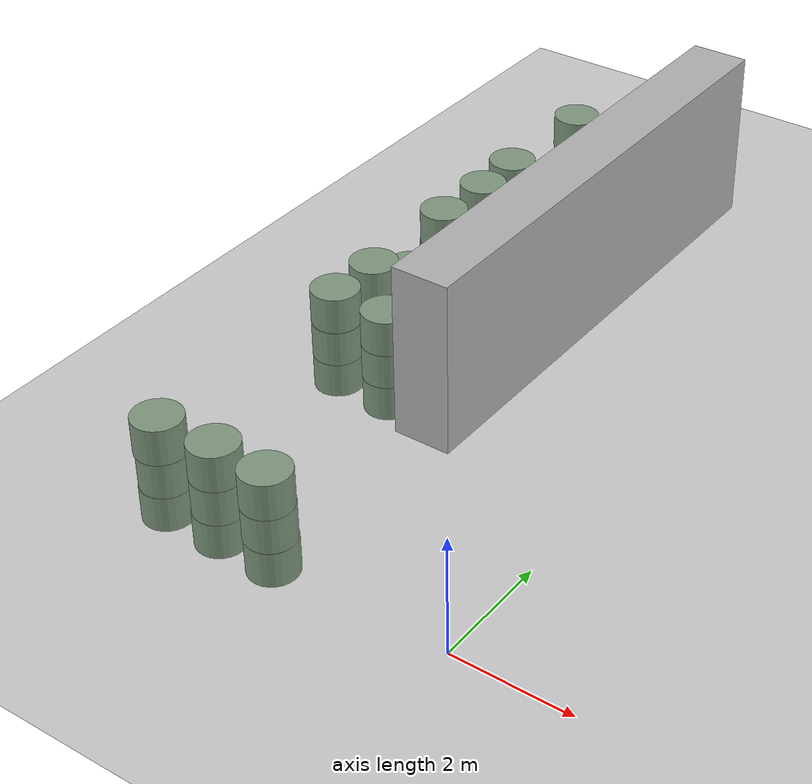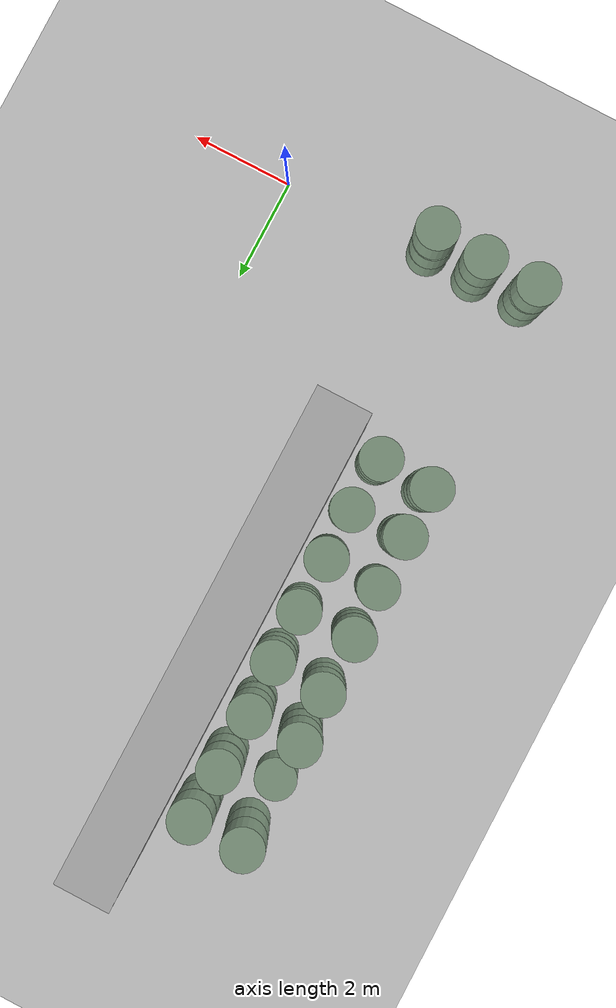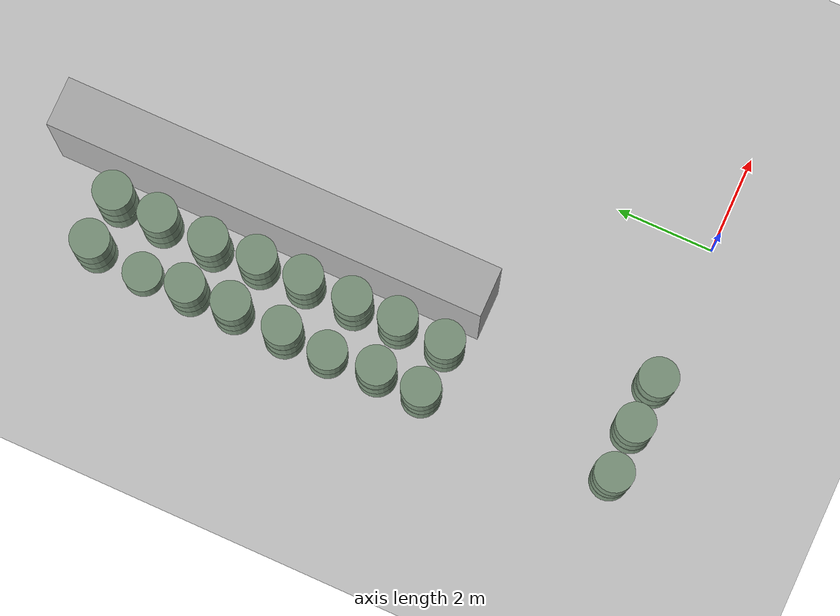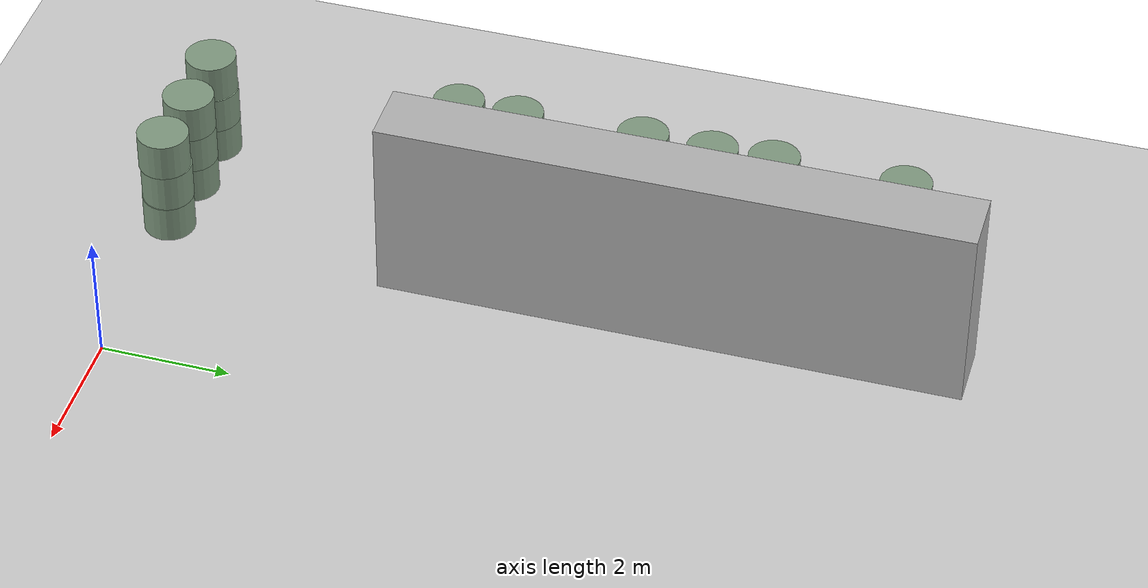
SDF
<sdf version="1.6">
 <world name="default">
  <include><uri>model://ground_plane</uri></include>
  <model name="wall_3">
   <pose>-3.0 8.0 1.5 0 -0 0</pose>
   <static>True</static>
   <link name="link">
    <inertial>
     <mass>100</mass>
     <inertia>
      <ixx>0.166667</ixx>
      <ixy>0</ixy>
      <ixz>0</ixz>
      <iyy>0.166667</iyy>
      <iyz>0</iyz>
      <izz>0.166667</izz>
     </inertia>
    </inertial>
    <collision name="collision"><geometry><box><size>1.0 9.0 3.0</size></box></geometry></collision>
    <visual name="visual">
     <geometry><box><size>1.0 9.0 3.0</size></box></geometry>
     <material><ambient>0.7 0.7 0.7 1</ambient><diffuse>0.7 0.7 0.7 1</diffuse></material>
    </visual>
   </link>
  </model>
  <model name="unit_cylinder_69">
   <pose>-4.99848152052 0.0227726292561 0.3 0 -0 0</pose>
   <static>True</static>
   <link name="link">
    <inertial>
     <mass>100</mass>
     <inertia><ixx>0.145833</ixx><ixy>0</ixy><ixz>0</ixz><iyy>0.145833</iyy><iyz>0</iyz><izz>0.125</izz></inertia>
    </inertial>
    <collision name="collision">
     <geometry><cylinder><radius>0.4</radius><length>0.6</length></cylinder></geometry>
     <max_contacts>100</max_contacts>
    </collision>
    <visual name="visual">
     <geometry><cylinder><radius>0.4</radius><length>0.6</length></cylinder></geometry>
     <material><ambient>0.5 0.6 0.5 1</ambient><diffuse>0.5 0.6 0.5 1</diffuse></material>
    </visual>
   </link>
  </model>
  <model name="unit_cylinder_70">
   <pose>-4.99345696738 0.0264924979025 0.9 0 -0 0</pose>
   <static>True</static>
   <link name="link">
    <inertial>
     <mass>100</mass>
     <inertia><ixx>0.145833</ixx><ixy>0</ixy><ixz>0</ixz><iyy>0.145833</iyy><iyz>0</iyz><izz>0.125</izz></inertia>
    </inertial>
    <collision name="collision">
     <geometry><cylinder><radius>0.4</radius><length>0.6</length></cylinder></geometry>
     <max_contacts>100</max_contacts>
    </collision>
    <visual name="visual">
     <geometry><cylinder><radius>0.4</radius><length>0.6</length></cylinder></geometry>
     <material><ambient>0.5 0.6 0.5 1</ambient><diffuse>0.5 0.6 0.5 1</diffuse></material>
    </visual>
   </link>
  </model>
  <model name="unit_cylinder_71">
   <pose>-5.00890611027 0.00850810186309 1.5 0 -0 0</pose>
   <static>True</static>
   <link name="link">
    <inertial>
     <mass>100</mass>
     <inertia><ixx>0.145833</ixx><ixy>0</ixy><ixz>0</ixz><iyy>0.145833</iyy><iyz>0</iyz><izz>0.125</izz></inertia>
    </inertial>
    <collision name="collision">
     <geometry><cylinder><radius>0.4</radius><length>0.6</length></cylinder></geometry>
     <max_contacts>100</max_contacts>
    </collision>
    <visual name="visual">
     <geometry><cylinder><radius>0.4</radius><length>0.6</length></cylinder></geometry>
     <material><ambient>0.5 0.6 0.5 1</ambient><diffuse>0.5 0.6 0.5 1</diffuse></material>
    </visual>
   </link>
  </model>
  <model name="unit_cylinder_72">
   <pose>-5.01350735114 4.0374060946 0.3 0 -0 0</pose>
   <static>True</static>
   <link name="link">
    <inertial>
     <mass>100</mass>
     <inertia><ixx>0.145833</ixx><ixy>0</ixy><ixz>0</ixz><iyy>0.145833</iyy><iyz>0</iyz><izz>0.125</izz></inertia>
    </inertial>
    <collision name="collision">
     <geometry><cylinder><radius>0.4</radius><length>0.6</length></cylinder></geometry>
     <max_contacts>100</max_contacts>
    </collision>
    <visual name="visual">
     <geometry><cylinder><radius>0.4</radius><length>0.6</length></cylinder></geometry>
     <material><ambient>0.5 0.6 0.5 1</ambient><diffuse>0.5 0.6 0.5 1</diffuse></material>
    </visual>
   </link>
  </model>
  <model name="unit_cylinder_73">
   <pose>-5.00704929442 4.02517461353 0.9 0 -0 0</pose>
   <static>True</static>
   <link name="link">
    <inertial>
     <mass>100</mass>
     <inertia><ixx>0.145833</ixx><ixy>0</ixy><ixz>0</ixz><iyy>0.145833</iyy><iyz>0</iyz><izz>0.125</izz></inertia>
    </inertial>
    <collision name="collision">
     <geometry><cylinder><radius>0.4</radius><length>0.6</length></cylinder></geometry>
     <max_contacts>100</max_contacts>
    </collision>
    <visual name="visual">
     <geometry><cylinder><radius>0.4</radius><length>0.6</length></cylinder></geometry>
     <material><ambient>0.5 0.6 0.5 1</ambient><diffuse>0.5 0.6 0.5 1</diffuse></material>
    </visual>
   </link>
  </model>
  <model name="unit_cylinder_74">
   <pose>-5.02067601518 4.0399817038 1.5 0 -0 0</pose>
   <static>True</static>
   <link name="link">
    <inertial>
     <mass>100</mass>
     <inertia><ixx>0.145833</ixx><ixy>0</ixy><ixz>0</ixz><iyy>0.145833</iyy><iyz>0</iyz><izz>0.125</izz></inertia>
    </inertial>
    <collision name="collision">
     <geometry><cylinder><radius>0.4</radius><length>0.6</length></cylinder></geometry>
     <max_contacts>100</max_contacts>
    </collision>
    <visual name="visual">
     <geometry><cylinder><radius>0.4</radius><length>0.6</length></cylinder></geometry>
     <material><ambient>0.5 0.6 0.5 1</ambient><diffuse>0.5 0.6 0.5 1</diffuse></material>
    </visual>
   </link>
  </model>
  <model name="unit_cylinder_75">
   <pose>-4.98786642314 4.98616906211 0.3 0 -0 0</pose>
   <static>True</static>
   <link name="link">
    <inertial>
     <mass>100</mass>
     <inertia><ixx>0.145833</ixx><ixy>0</ixy><ixz>0</ixz><iyy>0.145833</iyy><iyz>0</iyz><izz>0.125</izz></inertia>
    </inertial>
    <collision name="collision">
     <geometry><cylinder><radius>0.4</radius><length>0.6</length></cylinder></geometry>
     <max_contacts>100</max_contacts>
    </collision>
    <visual name="visual">
     <geometry><cylinder><radius>0.4</radius><length>0.6</length></cylinder></geometry>
     <material><ambient>0.5 0.6 0.5 1</ambient><diffuse>0.5 0.6 0.5 1</diffuse></material>
    </visual>
   </link>
  </model>
  <model name="unit_cylinder_76">
   <pose>-5.00452122358 4.99758510314 0.9 0 -0 0</pose>
   <static>True</static>
   <link name="link">
    <inertial>
     <mass>100</mass>
     <inertia><ixx>0.145833</ixx><ixy>0</ixy><ixz>0</ixz><iyy>0.145833</iyy><iyz>0</iyz><izz>0.125</izz></inertia>
    </inertial>
    <collision name="collision">
     <geometry><cylinder><radius>0.4</radius><length>0.6</length></cylinder></geometry>
     <max_contacts>100</max_contacts>
    </collision>
    <visual name="visual">
     <geometry><cylinder><radius>0.4</radius><length>0.6</length></cylinder></geometry>
     <material><ambient>0.5 0.6 0.5 1</ambient><diffuse>0.5 0.6 0.5 1</diffuse></material>
    </visual>
   </link>
  </model>
  <model name="unit_cylinder_77">
   <pose>-4.99413302788 4.98899225001 1.5 0 -0 0</pose>
   <static>True</static>
   <link name="link">
    <inertial>
     <mass>100</mass>
     <inertia><ixx>0.145833</ixx><ixy>0</ixy><ixz>0</ixz><iyy>0.145833</iyy><iyz>0</iyz><izz>0.125</izz></inertia>
    </inertial>
    <collision name="collision">
     <geometry><cylinder><radius>0.4</radius><length>0.6</length></cylinder></geometry>
     <max_contacts>100</max_contacts>
    </collision>
    <visual name="visual">
     <geometry><cylinder><radius>0.4</radius><length>0.6</length></cylinder></geometry>
     <material><ambient>0.5 0.6 0.5 1</ambient><diffuse>0.5 0.6 0.5 1</diffuse></material>
    </visual>
   </link>
  </model>
  <model name="unit_cylinder_78">
   <pose>-5.04710195503 6.02162401489 0.3 0 -0 0</pose>
   <static>True</static>
   <link name="link">
    <inertial>
     <mass>100</mass>
     <inertia><ixx>0.145833</ixx><ixy>0</ixy><ixz>0</ixz><iyy>0.145833</iyy><iyz>0</iyz><izz>0.125</izz></inertia>
    </inertial>
    <collision name="collision">
     <geometry><cylinder><radius>0.4</radius><length>0.6</length></cylinder></geometry>
     <max_contacts>100</max_contacts>
    </collision>
    <visual name="visual">
     <geometry><cylinder><radius>0.4</radius><length>0.6</length></cylinder></geometry>
     <material><ambient>0.5 0.6 0.5 1</ambient><diffuse>0.5 0.6 0.5 1</diffuse></material>
    </visual>
   </link>
  </model>
  <model name="unit_cylinder_79">
   <pose>-5.04280553614 6.01037416078 0.9 0 -0 0</pose>
   <static>True</static>
   <link name="link">
    <inertial>
     <mass>100</mass>
     <inertia><ixx>0.145833</ixx><ixy>0</ixy><ixz>0</ixz><iyy>0.145833</iyy><iyz>0</iyz><izz>0.125</izz></inertia>
    </inertial>
    <collision name="collision">
     <geometry><cylinder><radius>0.4</radius><length>0.6</length></cylinder></geometry>
     <max_contacts>100</max_contacts>
    </collision>
    <visual name="visual">
     <geometry><cylinder><radius>0.4</radius><length>0.6</length></cylinder></geometry>
     <material><ambient>0.5 0.6 0.5 1</ambient><diffuse>0.5 0.6 0.5 1</diffuse></material>
    </visual>
   </link>
  </model>
  <model name="unit_cylinder_81">
   <pose>-5.04393185823 6.95451794134 0.3 0 -0 0</pose>
   <static>True</static>
   <link name="link">
    <inertial>
     <mass>100</mass>
     <inertia><ixx>0.145833</ixx><ixy>0</ixy><ixz>0</ixz><iyy>0.145833</iyy><iyz>0</iyz><izz>0.125</izz></inertia>
    </inertial>
    <collision name="collision">
     <geometry><cylinder><radius>0.4</radius><length>0.6</length></cylinder></geometry>
     <max_contacts>100</max_contacts>
    </collision>
    <visual name="visual">
     <geometry><cylinder><radius>0.4</radius><length>0.6</length></cylinder></geometry>
     <material><ambient>0.5 0.6 0.5 1</ambient><diffuse>0.5 0.6 0.5 1</diffuse></material>
    </visual>
   </link>
  </model>
  <model name="unit_cylinder_82">
   <pose>-5.03932090455 6.94506136108 0.9 0 -0 0</pose>
   <static>True</static>
   <link name="link">
    <inertial>
     <mass>100</mass>
     <inertia><ixx>0.145833</ixx><ixy>0</ixy><ixz>0</ixz><iyy>0.145833</iyy><iyz>0</iyz><izz>0.125</izz></inertia>
    </inertial>
    <collision name="collision">
     <geometry><cylinder><radius>0.4</radius><length>0.6</length></cylinder></geometry>
     <max_contacts>100</max_contacts>
    </collision>
    <visual name="visual">
     <geometry><cylinder><radius>0.4</radius><length>0.6</length></cylinder></geometry>
     <material><ambient>0.5 0.6 0.5 1</ambient><diffuse>0.5 0.6 0.5 1</diffuse></material>
    </visual>
   </link>
  </model>
  <model name="unit_cylinder_83">
   <pose>-5.03553407795 6.95505699556 1.5 0 -0 0</pose>
   <static>True</static>
   <link name="link">
    <inertial>
     <mass>100</mass>
     <inertia><ixx>0.145833</ixx><ixy>0</ixy><ixz>0</ixz><iyy>0.145833</iyy><iyz>0</iyz><izz>0.125</izz></inertia>
    </inertial>
    <collision name="collision">
     <geometry><cylinder><radius>0.4</radius><length>0.6</length></cylinder></geometry>
     <max_contacts>100</max_contacts>
    </collision>
    <visual name="visual">
     <geometry><cylinder><radius>0.4</radius><length>0.6</length></cylinder></geometry>
     <material><ambient>0.5 0.6 0.5 1</ambient><diffuse>0.5 0.6 0.5 1</diffuse></material>
    </visual>
   </link>
  </model>
  <model name="unit_cylinder_84">
   <pose>-5.00933928022 8.0511418127 0.3 0 -0 0</pose>
   <static>True</static>
   <link name="link">
    <inertial>
     <mass>100</mass>
     <inertia><ixx>0.145833</ixx><ixy>0</ixy><ixz>0</ixz><iyy>0.145833</iyy><iyz>0</iyz><izz>0.125</izz></inertia>
    </inertial>
    <collision name="collision">
     <geometry><cylinder><radius>0.4</radius><length>0.6</length></cylinder></geometry>
     <max_contacts>100</max_contacts>
    </collision>
    <visual name="visual">
     <geometry><cylinder><radius>0.4</radius><length>0.6</length></cylinder></geometry>
     <material><ambient>0.5 0.6 0.5 1</ambient><diffuse>0.5 0.6 0.5 1</diffuse></material>
    </visual>
   </link>
  </model>
  <model name="unit_cylinder_85">
   <pose>-5.01664832256 8.04524498264 0.9 0 -0 0</pose>
   <static>True</static>
   <link name="link">
    <inertial>
     <mass>100</mass>
     <inertia><ixx>0.145833</ixx><ixy>0</ixy><ixz>0</ixz><iyy>0.145833</iyy><iyz>0</iyz><izz>0.125</izz></inertia>
    </inertial>
    <collision name="collision">
     <geometry><cylinder><radius>0.4</radius><length>0.6</length></cylinder></geometry>
     <max_contacts>100</max_contacts>
    </collision>
    <visual name="visual">
     <geometry><cylinder><radius>0.4</radius><length>0.6</length></cylinder></geometry>
     <material><ambient>0.5 0.6 0.5 1</ambient><diffuse>0.5 0.6 0.5 1</diffuse></material>
    </visual>
   </link>
  </model>
  <model name="unit_cylinder_86">
   <pose>-5.00025906629 8.04694959571 1.5 0 -0 0</pose>
   <static>True</static>
   <link name="link">
    <inertial>
     <mass>100</mass>
     <inertia><ixx>0.145833</ixx><ixy>0</ixy><ixz>0</ixz><iyy>0.145833</iyy><iyz>0</iyz><izz>0.125</izz></inertia>
    </inertial>
    <collision name="collision">
     <geometry><cylinder><radius>0.4</radius><length>0.6</length></cylinder></geometry>
     <max_contacts>100</max_contacts>
    </collision>
    <visual name="visual">
     <geometry><cylinder><radius>0.4</radius><length>0.6</length></cylinder></geometry>
     <material><ambient>0.5 0.6 0.5 1</ambient><diffuse>0.5 0.6 0.5 1</diffuse></material>
    </visual>
   </link>
  </model>
  <model name="unit_cylinder_87">
   <pose>-5.03361583227 8.9899572261 0.3 0 -0 0</pose>
   <static>True</static>
   <link name="link">
    <inertial>
     <mass>100</mass>
     <inertia><ixx>0.145833</ixx><ixy>0</ixy><ixz>0</ixz><iyy>0.145833</iyy><iyz>0</iyz><izz>0.125</izz></inertia>
    </inertial>
    <collision name="collision">
     <geometry><cylinder><radius>0.4</radius><length>0.6</length></cylinder></geometry>
     <max_contacts>100</max_contacts>
    </collision>
    <visual name="visual">
     <geometry><cylinder><radius>0.4</radius><length>0.6</length></cylinder></geometry>
     <material><ambient>0.5 0.6 0.5 1</ambient><diffuse>0.5 0.6 0.5 1</diffuse></material>
    </visual>
   </link>
  </model>
  <model name="unit_cylinder_88">
   <pose>-5.0315301935 8.99975556771 0.9 0 -0 0</pose>
   <static>True</static>
   <link name="link">
    <inertial>
     <mass>100</mass>
     <inertia><ixx>0.145833</ixx><ixy>0</ixy><ixz>0</ixz><iyy>0.145833</iyy><iyz>0</iyz><izz>0.125</izz></inertia>
    </inertial>
    <collision name="collision">
     <geometry><cylinder><radius>0.4</radius><length>0.6</length></cylinder></geometry>
     <max_contacts>100</max_contacts>
    </collision>
    <visual name="visual">
     <geometry><cylinder><radius>0.4</radius><length>0.6</length></cylinder></geometry>
     <material><ambient>0.5 0.6 0.5 1</ambient><diffuse>0.5 0.6 0.5 1</diffuse></material>
    </visual>
   </link>
  </model>
  <model name="unit_cylinder_89">
   <pose>-5.04416052345 8.99440187815 1.5 0 -0 0</pose>
   <static>True</static>
   <link name="link">
    <inertial>
     <mass>100</mass>
     <inertia><ixx>0.145833</ixx><ixy>0</ixy><ixz>0</ixz><iyy>0.145833</iyy><iyz>0</iyz><izz>0.125</izz></inertia>
    </inertial>
    <collision name="collision">
     <geometry><cylinder><radius>0.4</radius><length>0.6</length></cylinder></geometry>
     <max_contacts>100</max_contacts>
    </collision>
    <visual name="visual">
     <geometry><cylinder><radius>0.4</radius><length>0.6</length></cylinder></geometry>
     <material><ambient>0.5 0.6 0.5 1</ambient><diffuse>0.5 0.6 0.5 1</diffuse></material>
    </visual>
   </link>
  </model>
  <model name="unit_cylinder_90">
   <pose>-5.04374934187 10.0009645564 0.3 0 -0 0</pose>
   <static>True</static>
   <link name="link">
    <inertial>
     <mass>100</mass>
     <inertia><ixx>0.145833</ixx><ixy>0</ixy><ixz>0</ixz><iyy>0.145833</iyy><iyz>0</iyz><izz>0.125</izz></inertia>
    </inertial>
    <collision name="collision">
     <geometry><cylinder><radius>0.4</radius><length>0.6</length></cylinder></geometry>
     <max_contacts>100</max_contacts>
    </collision>
    <visual name="visual">
     <geometry><cylinder><radius>0.4</radius><length>0.6</length></cylinder></geometry>
     <material><ambient>0.5 0.6 0.5 1</ambient><diffuse>0.5 0.6 0.5 1</diffuse></material>
    </visual>
   </link>
  </model>
  <model name="unit_cylinder_93">
   <pose>-4.99656106606 11.031565169 0.3 0 -0 0</pose>
   <static>True</static>
   <link name="link">
    <inertial>
     <mass>100</mass>
     <inertia><ixx>0.145833</ixx><ixy>0</ixy><ixz>0</ixz><iyy>0.145833</iyy><iyz>0</iyz><izz>0.125</izz></inertia>
    </inertial>
    <collision name="collision">
     <geometry><cylinder><radius>0.4</radius><length>0.6</length></cylinder></geometry>
     <max_contacts>100</max_contacts>
    </collision>
    <visual name="visual">
     <geometry><cylinder><radius>0.4</radius><length>0.6</length></cylinder></geometry>
     <material><ambient>0.5 0.6 0.5 1</ambient><diffuse>0.5 0.6 0.5 1</diffuse></material>
    </visual>
   </link>
  </model>
  <model name="unit_cylinder_94">
   <pose>-5.00983286028 11.0314992949 0.9 0 -0 0</pose>
   <static>True</static>
   <link name="link">
    <inertial>
     <mass>100</mass>
     <inertia><ixx>0.145833</ixx><ixy>0</ixy><ixz>0</ixz><iyy>0.145833</iyy><iyz>0</iyz><izz>0.125</izz></inertia>
    </inertial>
    <collision name="collision">
     <geometry><cylinder><radius>0.4</radius><length>0.6</length></cylinder></geometry>
     <max_contacts>100</max_contacts>
    </collision>
    <visual name="visual">
     <geometry><cylinder><radius>0.4</radius><length>0.6</length></cylinder></geometry>
     <material><ambient>0.5 0.6 0.5 1</ambient><diffuse>0.5 0.6 0.5 1</diffuse></material>
    </visual>
   </link>
  </model>
  <model name="unit_cylinder_95">
   <pose>-5.01122460113 11.024978619 1.5 0 -0 0</pose>
   <static>True</static>
   <link name="link">
    <inertial>
     <mass>100</mass>
     <inertia><ixx>0.145833</ixx><ixy>0</ixy><ixz>0</ixz><iyy>0.145833</iyy><iyz>0</iyz><izz>0.125</izz></inertia>
    </inertial>
    <collision name="collision">
     <geometry><cylinder><radius>0.4</radius><length>0.6</length></cylinder></geometry>
     <max_contacts>100</max_contacts>
    </collision>
    <visual name="visual">
     <geometry><cylinder><radius>0.4</radius><length>0.6</length></cylinder></geometry>
     <material><ambient>0.5 0.6 0.5 1</ambient><diffuse>0.5 0.6 0.5 1</diffuse></material>
    </visual>
   </link>
  </model>
  <model name="unit_cylinder_111">
   <pose>-3.97921936671 0.0157081070823 0.3 0 -0 0</pose>
   <static>True</static>
   <link name="link">
    <inertial>
     <mass>100</mass>
     <inertia><ixx>0.145833</ixx><ixy>0</ixy><ixz>0</ixz><iyy>0.145833</iyy><iyz>0</iyz><izz>0.125</izz></inertia>
    </inertial>
    <collision name="collision">
     <geometry><cylinder><radius>0.4</radius><length>0.6</length></cylinder></geometry>
     <max_contacts>100</max_contacts>
    </collision>
    <visual name="visual">
     <geometry><cylinder><radius>0.4</radius><length>0.6</length></cylinder></geometry>
     <material><ambient>0.5 0.6 0.5 1</ambient><diffuse>0.5 0.6 0.5 1</diffuse></material>
    </visual>
   </link>
  </model>
  <model name="unit_cylinder_112">
   <pose>-3.97015070305 0.0192689229875 0.9 0 -0 0</pose>
   <static>True</static>
   <link name="link">
    <inertial>
     <mass>100</mass>
     <inertia><ixx>0.145833</ixx><ixy>0</ixy><ixz>0</ixz><iyy>0.145833</iyy><iyz>0</iyz><izz>0.125</izz></inertia>
    </inertial>
    <collision name="collision">
     <geometry><cylinder><radius>0.4</radius><length>0.6</length></cylinder></geometry>
     <max_contacts>100</max_contacts>
    </collision>
    <visual name="visual">
     <geometry><cylinder><radius>0.4</radius><length>0.6</length></cylinder></geometry>
     <material><ambient>0.5 0.6 0.5 1</ambient><diffuse>0.5 0.6 0.5 1</diffuse></material>
    </visual>
   </link>
  </model>
  <model name="unit_cylinder_113">
   <pose>-3.97194083613 0.0175867608281 1.5 0 -0 0</pose>
   <static>True</static>
   <link name="link">
    <inertial>
     <mass>100</mass>
     <inertia><ixx>0.145833</ixx><ixy>0</ixy><ixz>0</ixz><iyy>0.145833</iyy><iyz>0</iyz><izz>0.125</izz></inertia>
    </inertial>
    <collision name="collision">
     <geometry><cylinder><radius>0.4</radius><length>0.6</length></cylinder></geometry>
     <max_contacts>100</max_contacts>
    </collision>
    <visual name="visual">
     <geometry><cylinder><radius>0.4</radius><length>0.6</length></cylinder></geometry>
     <material><ambient>0.5 0.6 0.5 1</ambient><diffuse>0.5 0.6 0.5 1</diffuse></material>
    </visual>
   </link>
  </model>
  <model name="unit_cylinder_114">
   <pose>-3.99296988119 3.99175529385 0.3 0 -0 0</pose>
   <static>True</static>
   <link name="link">
    <inertial>
     <mass>100</mass>
     <inertia><ixx>0.145833</ixx><ixy>0</ixy><ixz>0</ixz><iyy>0.145833</iyy><iyz>0</iyz><izz>0.125</izz></inertia>
    </inertial>
    <collision name="collision">
     <geometry><cylinder><radius>0.4</radius><length>0.6</length></cylinder></geometry>
     <max_contacts>100</max_contacts>
    </collision>
    <visual name="visual">
     <geometry><cylinder><radius>0.4</radius><length>0.6</length></cylinder></geometry>
     <material><ambient>0.5 0.6 0.5 1</ambient><diffuse>0.5 0.6 0.5 1</diffuse></material>
    </visual>
   </link>
  </model>
  <model name="unit_cylinder_115">
   <pose>-4.00048408363 3.9909042298 0.9 0 -0 0</pose>
   <static>True</static>
   <link name="link">
    <inertial>
     <mass>100</mass>
     <inertia><ixx>0.145833</ixx><ixy>0</ixy><ixz>0</ixz><iyy>0.145833</iyy><iyz>0</iyz><izz>0.125</izz></inertia>
    </inertial>
    <collision name="collision">
     <geometry><cylinder><radius>0.4</radius><length>0.6</length></cylinder></geometry>
     <max_contacts>100</max_contacts>
    </collision>
    <visual name="visual">
     <geometry><cylinder><radius>0.4</radius><length>0.6</length></cylinder></geometry>
     <material><ambient>0.5 0.6 0.5 1</ambient><diffuse>0.5 0.6 0.5 1</diffuse></material>
    </visual>
   </link>
  </model>
  <model name="unit_cylinder_116">
   <pose>-3.99976567244 3.98904871571 1.5 0 -0 0</pose>
   <static>True</static>
   <link name="link">
    <inertial>
     <mass>100</mass>
     <inertia><ixx>0.145833</ixx><ixy>0</ixy><ixz>0</ixz><iyy>0.145833</iyy><iyz>0</iyz><izz>0.125</izz></inertia>
    </inertial>
    <collision name="collision">
     <geometry><cylinder><radius>0.4</radius><length>0.6</length></cylinder></geometry>
     <max_contacts>100</max_contacts>
    </collision>
    <visual name="visual">
     <geometry><cylinder><radius>0.4</radius><length>0.6</length></cylinder></geometry>
     <material><ambient>0.5 0.6 0.5 1</ambient><diffuse>0.5 0.6 0.5 1</diffuse></material>
    </visual>
   </link>
  </model>
  <model name="unit_cylinder_117">
   <pose>-3.94980847988 5.00428597641 0.3 0 -0 0</pose>
   <static>True</static>
   <link name="link">
    <inertial>
     <mass>100</mass>
     <inertia><ixx>0.145833</ixx><ixy>0</ixy><ixz>0</ixz><iyy>0.145833</iyy><iyz>0</iyz><izz>0.125</izz></inertia>
    </inertial>
    <collision name="collision">
     <geometry><cylinder><radius>0.4</radius><length>0.6</length></cylinder></geometry>
     <max_contacts>100</max_contacts>
    </collision>
    <visual name="visual">
     <geometry><cylinder><radius>0.4</radius><length>0.6</length></cylinder></geometry>
     <material><ambient>0.5 0.6 0.5 1</ambient><diffuse>0.5 0.6 0.5 1</diffuse></material>
    </visual>
   </link>
  </model>
  <model name="unit_cylinder_118">
   <pose>-3.96190752068 4.99112704398 0.9 0 -0 0</pose>
   <static>True</static>
   <link name="link">
    <inertial>
     <mass>100</mass>
     <inertia><ixx>0.145833</ixx><ixy>0</ixy><ixz>0</ixz><iyy>0.145833</iyy><iyz>0</iyz><izz>0.125</izz></inertia>
    </inertial>
    <collision name="collision">
     <geometry><cylinder><radius>0.4</radius><length>0.6</length></cylinder></geometry>
     <max_contacts>100</max_contacts>
    </collision>
    <visual name="visual">
     <geometry><cylinder><radius>0.4</radius><length>0.6</length></cylinder></geometry>
     <material><ambient>0.5 0.6 0.5 1</ambient><diffuse>0.5 0.6 0.5 1</diffuse></material>
    </visual>
   </link>
  </model>
  <model name="unit_cylinder_119">
   <pose>-3.96051881383 5.00188878624 1.5 0 -0 0</pose>
   <static>True</static>
   <link name="link">
    <inertial>
     <mass>100</mass>
     <inertia><ixx>0.145833</ixx><ixy>0</ixy><ixz>0</ixz><iyy>0.145833</iyy><iyz>0</iyz><izz>0.125</izz></inertia>
    </inertial>
    <collision name="collision">
     <geometry><cylinder><radius>0.4</radius><length>0.6</length></cylinder></geometry>
     <max_contacts>100</max_contacts>
    </collision>
    <visual name="visual">
     <geometry><cylinder><radius>0.4</radius><length>0.6</length></cylinder></geometry>
     <material><ambient>0.5 0.6 0.5 1</ambient><diffuse>0.5 0.6 0.5 1</diffuse></material>
    </visual>
   </link>
  </model>
  <model name="unit_cylinder_120">
   <pose>-3.97608582329 5.94442832306 0.3 0 -0 0</pose>
   <static>True</static>
   <link name="link">
    <inertial>
     <mass>100</mass>
     <inertia><ixx>0.145833</ixx><ixy>0</ixy><ixz>0</ixz><iyy>0.145833</iyy><iyz>0</iyz><izz>0.125</izz></inertia>
    </inertial>
    <collision name="collision">
     <geometry><cylinder><radius>0.4</radius><length>0.6</length></cylinder></geometry>
     <max_contacts>100</max_contacts>
    </collision>
    <visual name="visual">
     <geometry><cylinder><radius>0.4</radius><length>0.6</length></cylinder></geometry>
     <material><ambient>0.5 0.6 0.5 1</ambient><diffuse>0.5 0.6 0.5 1</diffuse></material>
    </visual>
   </link>
  </model>
  <model name="unit_cylinder_121">
   <pose>-3.97438545376 5.94584037535 0.9 0 -0 0</pose>
   <static>True</static>
   <link name="link">
    <inertial>
     <mass>100</mass>
     <inertia><ixx>0.145833</ixx><ixy>0</ixy><ixz>0</ixz><iyy>0.145833</iyy><iyz>0</iyz><izz>0.125</izz></inertia>
    </inertial>
    <collision name="collision">
     <geometry><cylinder><radius>0.4</radius><length>0.6</length></cylinder></geometry>
     <max_contacts>100</max_contacts>
    </collision>
    <visual name="visual">
     <geometry><cylinder><radius>0.4</radius><length>0.6</length></cylinder></geometry>
     <material><ambient>0.5 0.6 0.5 1</ambient><diffuse>0.5 0.6 0.5 1</diffuse></material>
    </visual>
   </link>
  </model>
  <model name="unit_cylinder_122">
   <pose>-3.96511692237 5.96040752363 1.5 0 -0 0</pose>
   <static>True</static>
   <link name="link">
    <inertial>
     <mass>100</mass>
     <inertia><ixx>0.145833</ixx><ixy>0</ixy><ixz>0</ixz><iyy>0.145833</iyy><iyz>0</iyz><izz>0.125</izz></inertia>
    </inertial>
    <collision name="collision">
     <geometry><cylinder><radius>0.4</radius><length>0.6</length></cylinder></geometry>
     <max_contacts>100</max_contacts>
    </collision>
    <visual name="visual">
     <geometry><cylinder><radius>0.4</radius><length>0.6</length></cylinder></geometry>
     <material><ambient>0.5 0.6 0.5 1</ambient><diffuse>0.5 0.6 0.5 1</diffuse></material>
    </visual>
   </link>
  </model>
  <model name="unit_cylinder_123">
   <pose>-3.96828025736 6.98576930949 0.3 0 -0 0</pose>
   <static>True</static>
   <link name="link">
    <inertial>
     <mass>100</mass>
     <inertia><ixx>0.145833</ixx><ixy>0</ixy><ixz>0</ixz><iyy>0.145833</iyy><iyz>0</iyz><izz>0.125</izz></inertia>
    </inertial>
    <collision name="collision">
     <geometry><cylinder><radius>0.4</radius><length>0.6</length></cylinder></geometry>
     <max_contacts>100</max_contacts>
    </collision>
    <visual name="visual">
     <geometry><cylinder><radius>0.4</radius><length>0.6</length></cylinder></geometry>
     <material><ambient>0.5 0.6 0.5 1</ambient><diffuse>0.5 0.6 0.5 1</diffuse></material>
    </visual>
   </link>
  </model>
  <model name="unit_cylinder_124">
   <pose>-3.97316254293 6.98152589552 0.9 0 -0 0</pose>
   <static>True</static>
   <link name="link">
    <inertial>
     <mass>100</mass>
     <inertia><ixx>0.145833</ixx><ixy>0</ixy><ixz>0</ixz><iyy>0.145833</iyy><iyz>0</iyz><izz>0.125</izz></inertia>
    </inertial>
    <collision name="collision">
     <geometry><cylinder><radius>0.4</radius><length>0.6</length></cylinder></geometry>
     <max_contacts>100</max_contacts>
    </collision>
    <visual name="visual">
     <geometry><cylinder><radius>0.4</radius><length>0.6</length></cylinder></geometry>
     <material><ambient>0.5 0.6 0.5 1</ambient><diffuse>0.5 0.6 0.5 1</diffuse></material>
    </visual>
   </link>
  </model>
  <model name="unit_cylinder_125">
   <pose>-3.97108153946 6.98472804267 1.5 0 -0 0</pose>
   <static>True</static>
   <link name="link">
    <inertial>
     <mass>100</mass>
     <inertia><ixx>0.145833</ixx><ixy>0</ixy><ixz>0</ixz><iyy>0.145833</iyy><iyz>0</iyz><izz>0.125</izz></inertia>
    </inertial>
    <collision name="collision">
     <geometry><cylinder><radius>0.4</radius><length>0.6</length></cylinder></geometry>
     <max_contacts>100</max_contacts>
    </collision>
    <visual name="visual">
     <geometry><cylinder><radius>0.4</radius><length>0.6</length></cylinder></geometry>
     <material><ambient>0.5 0.6 0.5 1</ambient><diffuse>0.5 0.6 0.5 1</diffuse></material>
    </visual>
   </link>
  </model>
  <model name="unit_cylinder_126">
   <pose>-3.98537463893 7.95970642519 0.3 0 -0 0</pose>
   <static>True</static>
   <link name="link">
    <inertial>
     <mass>100</mass>
     <inertia><ixx>0.145833</ixx><ixy>0</ixy><ixz>0</ixz><iyy>0.145833</iyy><iyz>0</iyz><izz>0.125</izz></inertia>
    </inertial>
    <collision name="collision">
     <geometry><cylinder><radius>0.4</radius><length>0.6</length></cylinder></geometry>
     <max_contacts>100</max_contacts>
    </collision>
    <visual name="visual">
     <geometry><cylinder><radius>0.4</radius><length>0.6</length></cylinder></geometry>
     <material><ambient>0.5 0.6 0.5 1</ambient><diffuse>0.5 0.6 0.5 1</diffuse></material>
    </visual>
   </link>
  </model>
  <model name="unit_cylinder_127">
   <pose>-3.98520981673 7.96263631538 0.9 0 -0 0</pose>
   <static>True</static>
   <link name="link">
    <inertial>
     <mass>100</mass>
     <inertia><ixx>0.145833</ixx><ixy>0</ixy><ixz>0</ixz><iyy>0.145833</iyy><iyz>0</iyz><izz>0.125</izz></inertia>
    </inertial>
    <collision name="collision">
     <geometry><cylinder><radius>0.4</radius><length>0.6</length></cylinder></geometry>
     <max_contacts>100</max_contacts>
    </collision>
    <visual name="visual">
     <geometry><cylinder><radius>0.4</radius><length>0.6</length></cylinder></geometry>
     <material><ambient>0.5 0.6 0.5 1</ambient><diffuse>0.5 0.6 0.5 1</diffuse></material>
    </visual>
   </link>
  </model>
  <model name="unit_cylinder_128">
   <pose>-3.98070994857 7.96487833722 1.5 0 -0 0</pose>
   <static>True</static>
   <link name="link">
    <inertial>
     <mass>100</mass>
     <inertia><ixx>0.145833</ixx><ixy>0</ixy><ixz>0</ixz><iyy>0.145833</iyy><iyz>0</iyz><izz>0.125</izz></inertia>
    </inertial>
    <collision name="collision">
     <geometry><cylinder><radius>0.4</radius><length>0.6</length></cylinder></geometry>
     <max_contacts>100</max_contacts>
    </collision>
    <visual name="visual">
     <geometry><cylinder><radius>0.4</radius><length>0.6</length></cylinder></geometry>
     <material><ambient>0.5 0.6 0.5 1</ambient><diffuse>0.5 0.6 0.5 1</diffuse></material>
    </visual>
   </link>
  </model>
  <model name="unit_cylinder_129">
   <pose>-4.04096031573 8.94668369466 0.3 0 -0 0</pose>
   <static>True</static>
   <link name="link">
    <inertial>
     <mass>100</mass>
     <inertia><ixx>0.145833</ixx><ixy>0</ixy><ixz>0</ixz><iyy>0.145833</iyy><iyz>0</iyz><izz>0.125</izz></inertia>
    </inertial>
    <collision name="collision">
     <geometry><cylinder><radius>0.4</radius><length>0.6</length></cylinder></geometry>
     <max_contacts>100</max_contacts>
    </collision>
    <visual name="visual">
     <geometry><cylinder><radius>0.4</radius><length>0.6</length></cylinder></geometry>
     <material><ambient>0.5 0.6 0.5 1</ambient><diffuse>0.5 0.6 0.5 1</diffuse></material>
    </visual>
   </link>
  </model>
  <model name="unit_cylinder_130">
   <pose>-4.04666883911 8.963228766 0.9 0 -0 0</pose>
   <static>True</static>
   <link name="link">
    <inertial>
     <mass>100</mass>
     <inertia><ixx>0.145833</ixx><ixy>0</ixy><ixz>0</ixz><iyy>0.145833</iyy><iyz>0</iyz><izz>0.125</izz></inertia>
    </inertial>
    <collision name="collision">
     <geometry><cylinder><radius>0.4</radius><length>0.6</length></cylinder></geometry>
     <max_contacts>100</max_contacts>
    </collision>
    <visual name="visual">
     <geometry><cylinder><radius>0.4</radius><length>0.6</length></cylinder></geometry>
     <material><ambient>0.5 0.6 0.5 1</ambient><diffuse>0.5 0.6 0.5 1</diffuse></material>
    </visual>
   </link>
  </model>
  <model name="unit_cylinder_131">
   <pose>-4.04568813131 8.96192910493 1.5 0 -0 0</pose>
   <static>True</static>
   <link name="link">
    <inertial>
     <mass>100</mass>
     <inertia><ixx>0.145833</ixx><ixy>0</ixy><ixz>0</ixz><iyy>0.145833</iyy><iyz>0</iyz><izz>0.125</izz></inertia>
    </inertial>
    <collision name="collision">
     <geometry><cylinder><radius>0.4</radius><length>0.6</length></cylinder></geometry>
     <max_contacts>100</max_contacts>
    </collision>
    <visual name="visual">
     <geometry><cylinder><radius>0.4</radius><length>0.6</length></cylinder></geometry>
     <material><ambient>0.5 0.6 0.5 1</ambient><diffuse>0.5 0.6 0.5 1</diffuse></material>
    </visual>
   </link>
  </model>
  <model name="unit_cylinder_132">
   <pose>-4.01268646141 10.045243006 0.3 0 -0 0</pose>
   <static>True</static>
   <link name="link">
    <inertial>
     <mass>100</mass>
     <inertia><ixx>0.145833</ixx><ixy>0</ixy><ixz>0</ixz><iyy>0.145833</iyy><iyz>0</iyz><izz>0.125</izz></inertia>
    </inertial>
    <collision name="collision">
     <geometry><cylinder><radius>0.4</radius><length>0.6</length></cylinder></geometry>
     <max_contacts>100</max_contacts>
    </collision>
    <visual name="visual">
     <geometry><cylinder><radius>0.4</radius><length>0.6</length></cylinder></geometry>
     <material><ambient>0.5 0.6 0.5 1</ambient><diffuse>0.5 0.6 0.5 1</diffuse></material>
    </visual>
   </link>
  </model>
  <model name="unit_cylinder_133">
   <pose>-4.01887493301 10.0396556776 0.9 0 -0 0</pose>
   <static>True</static>
   <link name="link">
    <inertial>
     <mass>100</mass>
     <inertia><ixx>0.145833</ixx><ixy>0</ixy><ixz>0</ixz><iyy>0.145833</iyy><iyz>0</iyz><izz>0.125</izz></inertia>
    </inertial>
    <collision name="collision">
     <geometry><cylinder><radius>0.4</radius><length>0.6</length></cylinder></geometry>
     <max_contacts>100</max_contacts>
    </collision>
    <visual name="visual">
     <geometry><cylinder><radius>0.4</radius><length>0.6</length></cylinder></geometry>
     <material><ambient>0.5 0.6 0.5 1</ambient><diffuse>0.5 0.6 0.5 1</diffuse></material>
    </visual>
   </link>
  </model>
  <model name="unit_cylinder_134">
   <pose>-4.02050881887 10.0476204208 1.5 0 -0 0</pose>
   <static>True</static>
   <link name="link">
    <inertial>
     <mass>100</mass>
     <inertia><ixx>0.145833</ixx><ixy>0</ixy><ixz>0</ixz><iyy>0.145833</iyy><iyz>0</iyz><izz>0.125</izz></inertia>
    </inertial>
    <collision name="collision">
     <geometry><cylinder><radius>0.4</radius><length>0.6</length></cylinder></geometry>
     <max_contacts>100</max_contacts>
    </collision>
    <visual name="visual">
     <geometry><cylinder><radius>0.4</radius><length>0.6</length></cylinder></geometry>
     <material><ambient>0.5 0.6 0.5 1</ambient><diffuse>0.5 0.6 0.5 1</diffuse></material>
    </visual>
   </link>
  </model>
  <model name="unit_cylinder_135">
   <pose>-3.98719968011 11.0049387255 0.3 0 -0 0</pose>
   <static>True</static>
   <link name="link">
    <inertial>
     <mass>100</mass>
     <inertia><ixx>0.145833</ixx><ixy>0</ixy><ixz>0</ixz><iyy>0.145833</iyy><iyz>0</iyz><izz>0.125</izz></inertia>
    </inertial>
    <collision name="collision">
     <geometry><cylinder><radius>0.4</radius><length>0.6</length></cylinder></geometry>
     <max_contacts>100</max_contacts>
    </collision>
    <visual name="visual">
     <geometry><cylinder><radius>0.4</radius><length>0.6</length></cylinder></geometry>
     <material><ambient>0.5 0.6 0.5 1</ambient><diffuse>0.5 0.6 0.5 1</diffuse></material>
    </visual>
   </link>
  </model>
  <model name="unit_cylinder_136">
   <pose>-3.97757236664 11.0157687692 0.9 0 -0 0</pose>
   <static>True</static>
   <link name="link">
    <inertial>
     <mass>100</mass>
     <inertia><ixx>0.145833</ixx><ixy>0</ixy><ixz>0</ixz><iyy>0.145833</iyy><iyz>0</iyz><izz>0.125</izz></inertia>
    </inertial>
    <collision name="collision">
     <geometry><cylinder><radius>0.4</radius><length>0.6</length></cylinder></geometry>
     <max_contacts>100</max_contacts>
    </collision>
    <visual name="visual">
     <geometry><cylinder><radius>0.4</radius><length>0.6</length></cylinder></geometry>
     <material><ambient>0.5 0.6 0.5 1</ambient><diffuse>0.5 0.6 0.5 1</diffuse></material>
    </visual>
   </link>
  </model>
  <model name="unit_cylinder_137">
   <pose>-3.97512927614 11.0220146944 1.5 0 -0 0</pose>
   <static>True</static>
   <link name="link">
    <inertial>
     <mass>100</mass>
     <inertia><ixx>0.145833</ixx><ixy>0</ixy><ixz>0</ixz><iyy>0.145833</iyy><iyz>0</iyz><izz>0.125</izz></inertia>
    </inertial>
    <collision name="collision">
     <geometry><cylinder><radius>0.4</radius><length>0.6</length></cylinder></geometry>
     <max_contacts>100</max_contacts>
    </collision>
    <visual name="visual">
     <geometry><cylinder><radius>0.4</radius><length>0.6</length></cylinder></geometry>
     <material><ambient>0.5 0.6 0.5 1</ambient><diffuse>0.5 0.6 0.5 1</diffuse></material>
    </visual>
   </link>
  </model>
  <model name="unit_cylinder_153">
   <pose>-2.98881881403 -0.0191576676366 0.3 0 -0 0</pose>
   <static>True</static>
   <link name="link">
    <inertial>
     <mass>100</mass>
     <inertia><ixx>0.145833</ixx><ixy>0</ixy><ixz>0</ixz><iyy>0.145833</iyy><iyz>0</iyz><izz>0.125</izz></inertia>
    </inertial>
    <collision name="collision">
     <geometry><cylinder><radius>0.4</radius><length>0.6</length></cylinder></geometry>
     <max_contacts>100</max_contacts>
    </collision>
    <visual name="visual">
     <geometry><cylinder><radius>0.4</radius><length>0.6</length></cylinder></geometry>
     <material><ambient>0.5 0.6 0.5 1</ambient><diffuse>0.5 0.6 0.5 1</diffuse></material>
    </visual>
   </link>
  </model>
  <model name="unit_cylinder_154">
   <pose>-3.00473613911 -0.019152416332 0.9 0 -0 0</pose>
   <static>True</static>
   <link name="link">
    <inertial>
     <mass>100</mass>
     <inertia><ixx>0.145833</ixx><ixy>0</ixy><ixz>0</ixz><iyy>0.145833</iyy><iyz>0</iyz><izz>0.125</izz></inertia>
    </inertial>
    <collision name="collision">
     <geometry><cylinder><radius>0.4</radius><length>0.6</length></cylinder></geometry>
     <max_contacts>100</max_contacts>
    </collision>
    <visual name="visual">
     <geometry><cylinder><radius>0.4</radius><length>0.6</length></cylinder></geometry>
     <material><ambient>0.5 0.6 0.5 1</ambient><diffuse>0.5 0.6 0.5 1</diffuse></material>
    </visual>
   </link>
  </model>
  <model name="unit_cylinder_155">
   <pose>-2.9968993678 -0.0371822718634 1.5 0 -0 0</pose>
   <static>True</static>
   <link name="link">
    <inertial>
     <mass>100</mass>
     <inertia><ixx>0.145833</ixx><ixy>0</ixy><ixz>0</ixz><iyy>0.145833</iyy><iyz>0</iyz><izz>0.125</izz></inertia>
    </inertial>
    <collision name="collision">
     <geometry><cylinder><radius>0.4</radius><length>0.6</length></cylinder></geometry>
     <max_contacts>100</max_contacts>
    </collision>
    <visual name="visual">
     <geometry><cylinder><radius>0.4</radius><length>0.6</length></cylinder></geometry>
     <material><ambient>0.5 0.6 0.5 1</ambient><diffuse>0.5 0.6 0.5 1</diffuse></material>
    </visual>
   </link>
  </model>
 </world>
</sdf>
